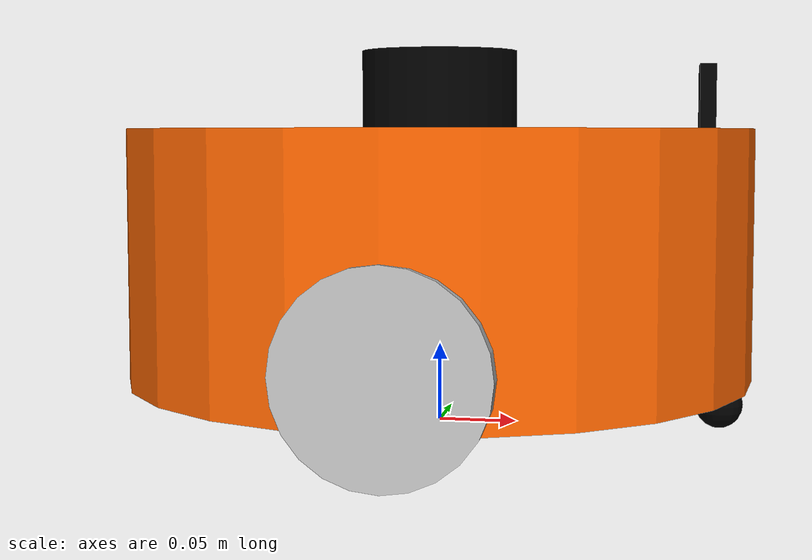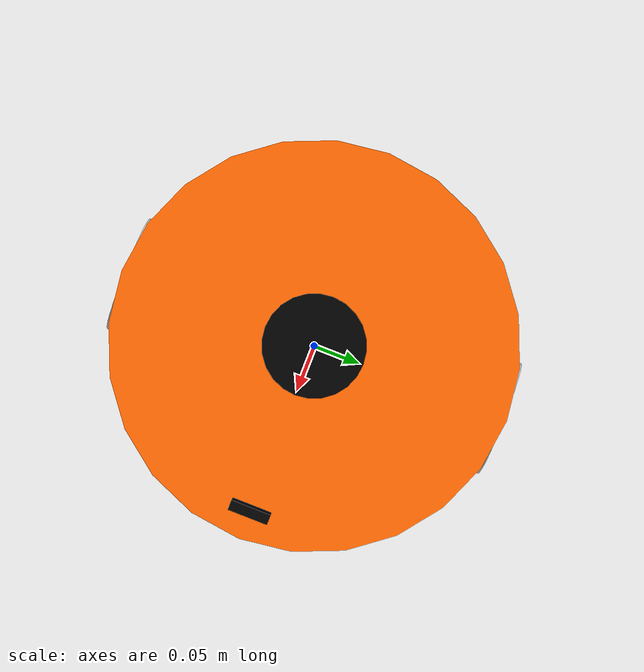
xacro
<?xml version="1.0"?>
<robot name="arm" xmlns:xacro="http://www.ros.org/wiki/xacro">

    <xacro:include filename="$(find surround_car)/urdf/xacro/mbot_base.xacro" />
    <xacro:include filename="$(find surround_car)/urdf/xacro/sensors/camera.xacro" />
    <xacro:include filename="$(find surround_car)/urdf/xacro/sensors/lidar.xacro" />

    <xacro:property name="camera_offset_x" value="0.17" />
    <xacro:property name="camera_offset_y" value="0" />
    <xacro:property name="camera_offset_z" value="0.10" />

    <xacro:property name="lidar_offset_x" value="0" />
    <xacro:property name="lidar_offset_y" value="0" />
    <xacro:property name="lidar_offset_z" value="0.105" />

    <xacro:mbot_base/><!--前面要加头xacro:否则不能调用,,头+宏定义名+参数-->

    <!-- Camera -->
    <joint name="camera_joint" type="fixed">
        <origin xyz="${camera_offset_x} ${camera_offset_y} ${camera_offset_z}" rpy="0 0 0" />
        <parent link="base_link"/>
        <child link="camera_link"/>
    </joint>

   <joint name="lidar_joint" type="fixed">
        <origin xyz="${lidar_offset_x} ${lidar_offset_y} ${lidar_offset_z}" rpy="0 0 0" />
        <parent link="base_link"/>
        <child link="laser_link"/>
    </joint>

    <xacro:usb_camera prefix="camera"/>
    <xacro:rplidar prefix="laser"/>

</robot>

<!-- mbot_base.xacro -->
<robot name="mbot" xmlns:xacro="http://www.ros.org/wiki/xacro">
    <!-- PROPERTY LIST --><!--常量定义-->
    <xacro:property name="M_PI" value="3.1415926"/>
    <xacro:property name="base_radius" value="0.20"/>
    <xacro:property name="base_length" value="0.16"/>

    <xacro:property name="wheel_radius" value="0.06"/>
    <xacro:property name="wheel_length" value="0.025"/>
    <xacro:property name="wheel_joint_y" value="0.19"/>
    <xacro:property name="wheel_joint_z" value="0.05"/>

    <xacro:property name="caster_radius" value="0.015"/> <!-- wheel_radius - ( base_length/2 - wheel_joint_z) -->
    <xacro:property name="caster_joint_x" value="0.18"/>

    <!-- Defining the colors used in this robot -->
    <material name="yellow">
        <color rgba="1 0.4 0 1"/>
    </material>
    <material name="black">
        <color rgba="0 0 0 0.95"/>
    </material>
    <material name="gray">
        <color rgba="0.75 0.75 0.75 1"/>
    </material>

    <!-- Macro for robot wheel --><!--主动轮宏定义-->
    <xacro:macro name="wheel" params="prefix reflect">
        <joint name="${prefix}_wheel_joint" type="continuous">
            <origin xyz="0 ${reflect*wheel_joint_y} ${-wheel_joint_z}" rpy="0 0 0"/>
            <parent link="base_link"/>
            <child link="${prefix}_wheel_link"/>
            <axis xyz="0 1 0"/>
        </joint>

        <link name="${prefix}_wheel_link">
            <visual>
                <origin xyz="0 0 0" rpy="${M_PI/2} 0 0" />
                <geometry>
                    <cylinder radius="${wheel_radius}" length = "${wheel_length}"/>
                </geometry>
                <material name="gray" />
            </visual>
        </link>
    </xacro:macro>

    <!-- Macro for robot caster -->
    <xacro:macro name="caster" params="prefix reflect">
        <joint name="${prefix}_caster_joint" type="continuous">
            <origin xyz="${reflect*caster_joint_x} 0 ${-(base_length/2 + caster_radius)}" rpy="0 0 0"/>
            <parent link="base_link"/>
            <child link="${prefix}_caster_link"/>
            <axis xyz="0 1 0"/>
        </joint>

        <link name="${prefix}_caster_link">
            <visual>
                <origin xyz="0 0 0" rpy="0 0 0"/>
                <geometry>
                    <sphere radius="${caster_radius}" />
                </geometry>
                <material name="black" />
            </visual>
        </link>
    </xacro:macro>

    <xacro:macro name="mbot_base">
        <link name="base_footprint">
            <visual>
                <origin xyz="0 0 0" rpy="0 0 0" />
                <geometry>
                    <box size="0.001 0.001 0.001" />
                </geometry>
            </visual>
        </link>

        <joint name="base_footprint_joint" type="fixed">
            <origin xyz="0 0 ${base_length/2 + caster_radius*2}" rpy="0 0 0" />
            <parent link="base_footprint"/>
            <child link="base_link" />
        </joint>

        <link name="base_link">
            <visual>
                <origin xyz=" 0 0 0" rpy="0 0 0" />
                <geometry>
                    <cylinder length="${base_length}" radius="${base_radius}"/>
                </geometry>
                <material name="yellow" />
            </visual>
        </link>

        <xacro:wheel prefix="left" reflect="-1"/><!--前面要加头xacro:否则不能调用,,头+宏定义名+参数-->
        <xacro:wheel prefix="right" reflect="1"/><!--前面要加头xacro:否则不能调用,,头+宏定义名+参数-->

        <xacro:caster prefix="front" reflect="-1"/><!--前面要加头xacro:否则不能调用,,头+宏定义名+参数-->
        <xacro:caster prefix="back" reflect="1"/><!--前面要加头xacro:否则不能调用,,头+宏定义名+参数-->
    </xacro:macro>
</robot>

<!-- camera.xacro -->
<robot xmlns:xacro="http://www.ros.org/wiki/xacro" name="camera"><!--cameral-->
    <xacro:macro name="usb_camera" params="prefix:=camera">
        <link name="${prefix}_link">
            <visual>
                <origin xyz=" 0 0 0 " rpy="0 0 0" />
                <geometry>
                    <box size="0.01 0.04 0.04"/>
                </geometry>
                <material name="black"/>
            </visual>
        </link>
    </xacro:macro>
</robot>

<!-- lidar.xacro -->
<robot xmlns:xacro="http://www.ros.org/wiki/xacro" name="laser">

  <xacro:macro name="rplidar" params="prefix:=laser">
    <link name="${prefix}_link">
      <visual>
        <origin xyz=" 0 0 0 " rpy="0 0 0" />
        <geometry>
          <cylinder length="0.05" radius="0.05"/>
        </geometry>
        <material name="black"/>
      </visual>
    </link>
  </xacro:macro>

</robot>
